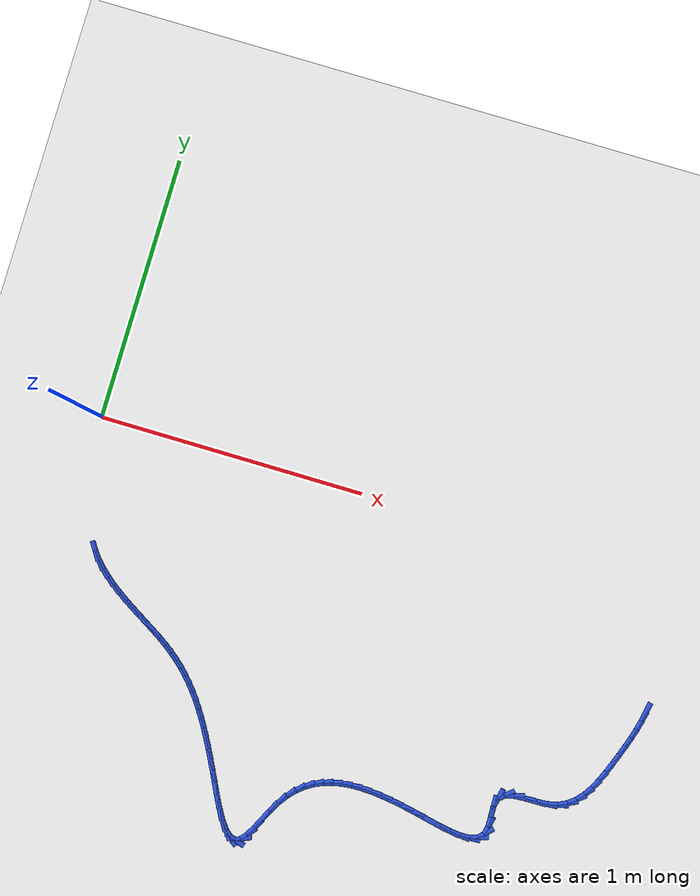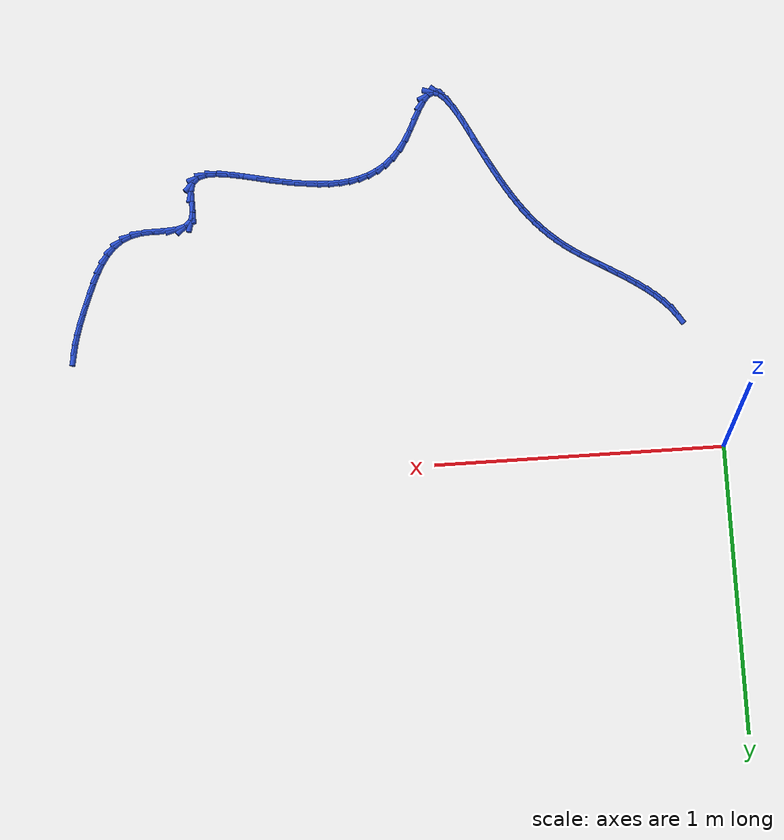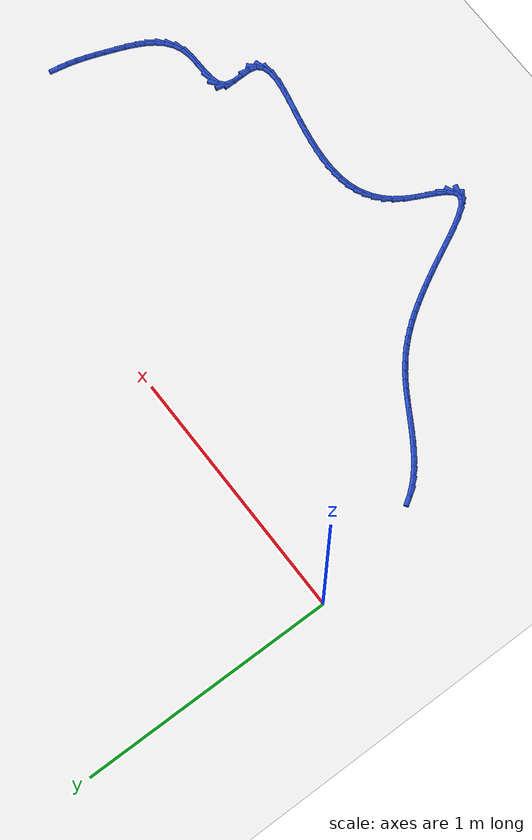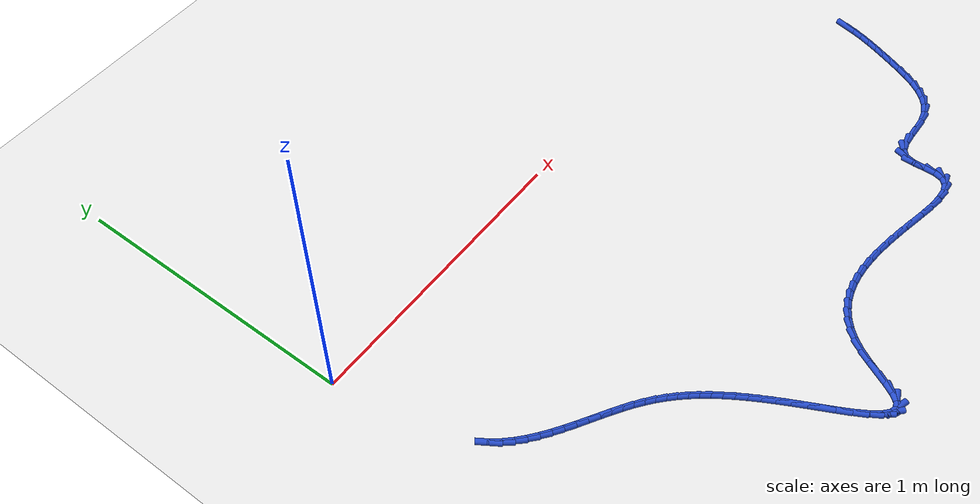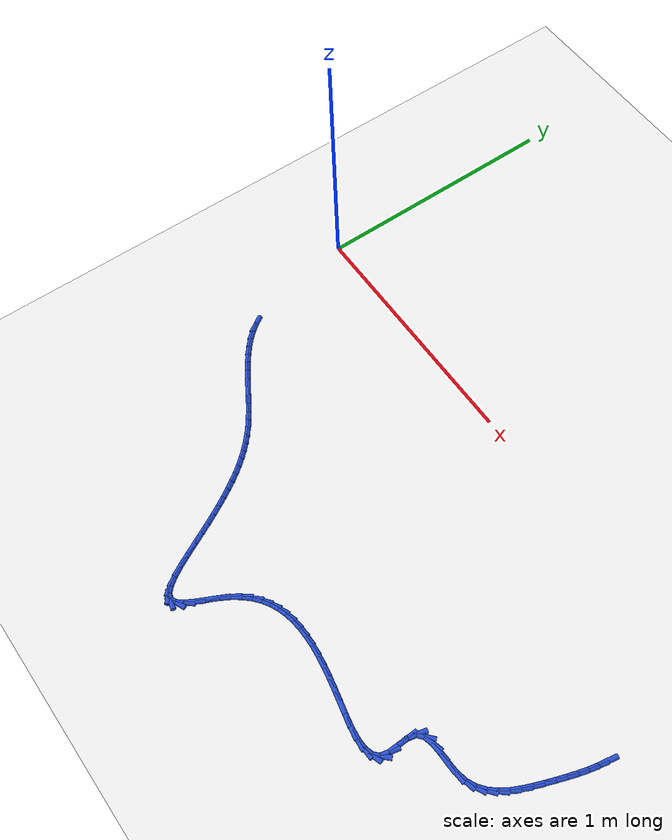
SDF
<sdf version="1.6">
 <world name="default">
  <model name="ground_plane">
   <static>1</static>
   <link name="link">
    <collision name="collision">
     <geometry><plane><normal>0 0 1</normal><size>100 100</size></plane></geometry>
     <surface><friction><ode><mu>100</mu><mu2>50</mu2></ode></friction></surface>
    </collision>
    <visual name="visual">
     <cast_shadows>0</cast_shadows>
     <geometry><plane><normal>0 0 1</normal><size>100 100</size></plane></geometry>
     <material>
      <script><uri>file://media/materials/scripts/gazebo.material</uri><name>Gazebo/WhiteGlow</name></script>
     </material>
    </visual>
   </link>
  </model>
  <model name="line">
   <link name="link_153">
    <pose>2.22496270436728 -0.4752385417204542 0.01 0 1.57 1.3793278878577797</pose>
    <collision name="collision">
     <geometry><cylinder><radius>0.01</radius><length>0.08</length></cylinder></geometry>
    </collision>
    <visual name="visual">
     <material>
      <script><name>Gazebo/Blue</name><uri>file://media/materials/scripts/gazebo.material</uri></script>
     </material>
     <geometry><cylinder><radius>0.01</radius><length>0.08</length></cylinder></geometry>
    </visual>
   </link>
   <link name="link_154">
    <pose>2.218258596094223 -0.509823786244519 0.01 0 1.57 1.3231855823085519</pose>
    <collision name="collision">
     <geometry><cylinder><radius>0.01</radius><length>0.08</length></cylinder></geometry>
    </collision>
    <visual name="visual">
     <material>
      <script><name>Gazebo/Blue</name><uri>file://media/materials/scripts/gazebo.material</uri></script>
     </material>
     <geometry><cylinder><radius>0.01</radius><length>0.08</length></cylinder></geometry>
    </visual>
   </link>
   <link name="link_155">
    <pose>2.2094634976810403 -0.5446147391092758 0.01 0 1.57 1.2784393899785345</pose>
    <collision name="collision">
     <geometry><cylinder><radius>0.01</radius><length>0.08</length></cylinder></geometry>
    </collision>
    <visual name="visual">
     <material>
      <script><name>Gazebo/Blue</name><uri>file://media/materials/scripts/gazebo.material</uri></script>
     </material>
     <geometry><cylinder><radius>0.01</radius><length>0.08</length></cylinder></geometry>
    </visual>
   </link>
   <link name="link_156">
    <pose>2.198914836921006 -0.5796622870430734 0.01 0 1.57 1.2444761461741571</pose>
    <collision name="collision">
     <geometry><cylinder><radius>0.01</radius><length>0.08</length></cylinder></geometry>
    </collision>
    <visual name="visual">
     <material>
      <script><name>Gazebo/Blue</name><uri>file://media/materials/scripts/gazebo.material</uri></script>
     </material>
     <geometry><cylinder><radius>0.01</radius><length>0.08</length></cylinder></geometry>
    </visual>
   </link>
   <link name="link_157">
    <pose>2.18695004160739 -0.6150173167742595 0.01 0 1.57 1.2206210550342915</pose>
    <collision name="collision">
     <geometry><cylinder><radius>0.01</radius><length>0.08</length></cylinder></geometry>
    </collision>
    <visual name="visual">
     <material>
      <script><name>Gazebo/Blue</name><uri>file://media/materials/scripts/gazebo.material</uri></script>
     </material>
     <geometry><cylinder><radius>0.01</radius><length>0.08</length></cylinder></geometry>
    </visual>
   </link>
   <link name="link_158">
    <pose>2.1739065395334656 -0.6507307150311828 0.01 0 1.57 1.206236548502255</pose>
    <collision name="collision">
     <geometry><cylinder><radius>0.01</radius><length>0.08</length></cylinder></geometry>
    </collision>
    <visual name="visual">
     <material>
      <script><name>Gazebo/Blue</name><uri>file://media/materials/scripts/gazebo.material</uri></script>
     </material>
     <geometry><cylinder><radius>0.01</radius><length>0.08</length></cylinder></geometry>
    </visual>
   </link>
   <link name="link_159">
    <pose>2.1601215736117334 -0.6868531696004195 0.01 0 1.57 1.192841448387615</pose>
    <collision name="collision">
     <geometry><cylinder><radius>0.01</radius><length>0.08</length></cylinder></geometry>
    </collision>
    <visual name="visual">
     <material>
      <script><name>Gazebo/Blue</name><uri>file://media/materials/scripts/gazebo.material</uri></script>
     </material>
     <geometry><cylinder><radius>0.01</radius><length>0.08</length></cylinder></geometry>
    </visual>
   </link>
   <link name="link_160">
    <pose>2.1456972973618265 -0.7231823992863542 0.01 0 1.57 1.1563097768955477</pose>
    <collision name="collision">
     <geometry><cylinder><radius>0.01</radius><length>0.08</length></cylinder></geometry>
    </collision>
    <visual name="visual">
     <material>
      <script><name>Gazebo/Blue</name><uri>file://media/materials/scripts/gazebo.material</uri></script>
     </material>
     <geometry><cylinder><radius>0.01</radius><length>0.08</length></cylinder></geometry>
    </visual>
   </link>
   <link name="link_161">
    <pose>2.1300405354158336 -0.7587679111649521 0.01 0 1.57 1.0899143388705692</pose>
    <collision name="collision">
     <geometry><cylinder><radius>0.01</radius><length>0.08</length></cylinder></geometry>
    </collision>
    <visual name="visual">
     <material>
      <script><name>Gazebo/Blue</name><uri>file://media/materials/scripts/gazebo.material</uri></script>
     </material>
     <geometry><cylinder><radius>0.01</radius><length>0.08</length></cylinder></geometry>
    </visual>
   </link>
   <link name="link_162">
    <pose>2.112430172607958 -0.7925215421261379 0.01 0 1.57 0.988895186245236</pose>
    <collision name="collision">
     <geometry><cylinder><radius>0.01</radius><length>0.08</length></cylinder></geometry>
    </collision>
    <visual name="visual">
     <material>
      <script><name>Gazebo/Blue</name><uri>file://media/materials/scripts/gazebo.material</uri></script>
     </material>
     <geometry><cylinder><radius>0.01</radius><length>0.08</length></cylinder></geometry>
    </visual>
   </link>
   <link name="link_163">
    <pose>2.0921450937724058 -0.823355129059837 0.01 0 1.57 0.847576881285694</pose>
    <collision name="collision">
     <geometry><cylinder><radius>0.01</radius><length>0.08</length></cylinder></geometry>
    </collision>
    <visual name="visual">
     <material>
      <script><name>Gazebo/Blue</name><uri>file://media/materials/scripts/gazebo.material</uri></script>
     </material>
     <geometry><cylinder><radius>0.01</radius><length>0.08</length></cylinder></geometry>
    </visual>
   </link>
   <link name="link_164">
    <pose>2.068464183743382 -0.8501805088559743 0.01 0 1.57 0.6634695389039632</pose>
    <collision name="collision">
     <geometry><cylinder><radius>0.01</radius><length>0.08</length></cylinder></geometry>
    </collision>
    <visual name="visual">
     <material>
      <script><name>Gazebo/Blue</name><uri>file://media/materials/scripts/gazebo.material</uri></script>
     </material>
     <geometry><cylinder><radius>0.01</radius><length>0.08</length></cylinder></geometry>
    </visual>
   </link>
   <link name="link_165">
    <pose>2.040666327355091 -0.871909518404475 0.01 0 1.57 0.4445081977203441</pose>
    <collision name="collision">
     <geometry><cylinder><radius>0.01</radius><length>0.08</length></cylinder></geometry>
    </collision>
    <visual name="visual">
     <material>
      <script><name>Gazebo/Blue</name><uri>file://media/materials/scripts/gazebo.material</uri></script>
     </material>
     <geometry><cylinder><radius>0.01</radius><length>0.08</length></cylinder></geometry>
    </visual>
   </link>
   <link name="link_166">
    <pose>2.008030409441737 -0.8874539945952634 0.01 0 1.57 0.2165230808616176</pose>
    <collision name="collision">
     <geometry><cylinder><radius>0.01</radius><length>0.08</length></cylinder></geometry>
    </collision>
    <visual name="visual">
     <material>
      <script><name>Gazebo/Blue</name><uri>file://media/materials/scripts/gazebo.material</uri></script>
     </material>
     <geometry><cylinder><radius>0.01</radius><length>0.08</length></cylinder></geometry>
    </visual>
   </link>
   <link name="link_167">
    <pose>1.9699323869786374 -0.8958344721589827 0.01 0 1.57 0.06271989279457768</pose>
    <collision name="collision">
     <geometry><cylinder><radius>0.01</radius><length>0.08</length></cylinder></geometry>
    </collision>
    <visual name="visual">
     <material>
      <script><name>Gazebo/Blue</name><uri>file://media/materials/scripts/gazebo.material</uri></script>
     </material>
     <geometry><cylinder><radius>0.01</radius><length>0.08</length></cylinder></geometry>
    </visual>
   </link>
   <link name="link_168">
    <pose>1.927894272865719 -0.898474560924802 0.01 0 1.57 0.01590419140680189</pose>
    <collision name="collision">
     <geometry><cylinder><radius>0.01</radius><length>0.08</length></cylinder></geometry>
    </collision>
    <visual name="visual">
     <material>
      <script><name>Gazebo/Blue</name><uri>file://media/materials/scripts/gazebo.material</uri></script>
     </material>
     <geometry><cylinder><radius>0.01</radius><length>0.08</length></cylinder></geometry>
    </visual>
   </link>
   <link name="link_169">
    <pose>1.885537097894417 -0.8991482743477214 0.01 0 1.57 0.06610002634053562</pose>
    <collision name="collision">
     <geometry><cylinder><radius>0.01</radius><length>0.08</length></cylinder></geometry>
    </collision>
    <visual name="visual">
     <material>
      <script><name>Gazebo/Blue</name><uri>file://media/materials/scripts/gazebo.material</uri></script>
     </material>
     <geometry><cylinder><radius>0.01</radius><length>0.08</length></cylinder></geometry>
    </visual>
   </link>
   <link name="link_170">
    <pose>1.8465695559421471 -0.9017277878069309 0.01 0 1.57 0.2564681852939169</pose>
    <collision name="collision">
     <geometry><cylinder><radius>0.01</radius><length>0.08</length></cylinder></geometry>
    </collision>
    <visual name="visual">
     <material>
      <script><name>Gazebo/Blue</name><uri>file://media/materials/scripts/gazebo.material</uri></script>
     </material>
     <geometry><cylinder><radius>0.01</radius><length>0.08</length></cylinder></geometry>
    </visual>
   </link>
   <link name="link_171">
    <pose>1.8147003408863251 -0.9100852766816205 0.01 0 1.57 0.7073749556242062</pose>
    <collision name="collision">
     <geometry><cylinder><radius>0.01</radius><length>0.08</length></cylinder></geometry>
    </collision>
    <visual name="visual">
     <material>
      <script><name>Gazebo/Blue</name><uri>file://media/materials/scripts/gazebo.material</uri></script>
     </material>
     <geometry><cylinder><radius>0.01</radius><length>0.08</length></cylinder></geometry>
    </visual>
   </link>
   <link name="link_172">
    <pose>1.7936381466043672 -0.928092916350981 0.01 0 1.57 1.3246263786754433</pose>
    <collision name="collision">
     <geometry><cylinder><radius>0.01</radius><length>0.08</length></cylinder></geometry>
    </collision>
    <visual name="visual">
     <material>
      <script><name>Gazebo/Blue</name><uri>file://media/materials/scripts/gazebo.material</uri></script>
     </material>
     <geometry><cylinder><radius>0.01</radius><length>0.08</length></cylinder></geometry>
    </visual>
   </link>
   <link name="link_173">
    <pose>1.785988051865306 -0.9585391014576328 0.01 0 1.57 -1.551234601585176</pose>
    <collision name="collision">
     <geometry><cylinder><radius>0.01</radius><length>0.08</length></cylinder></geometry>
    </collision>
    <visual name="visual">
     <material>
      <script><name>Gazebo/Blue</name><uri>file://media/materials/scripts/gazebo.material</uri></script>
     </material>
     <geometry><cylinder><radius>0.01</radius><length>0.08</length></cylinder></geometry>
    </visual>
   </link>
   <link name="link_174">
    <pose>1.7867352123665996 -0.9967292502184554 0.01 0 1.57 -1.5468131659820639</pose>
    <collision name="collision">
     <geometry><cylinder><radius>0.01</radius><length>0.08</length></cylinder></geometry>
    </collision>
    <visual name="visual">
     <material>
      <script><name>Gazebo/Blue</name><uri>file://media/materials/scripts/gazebo.material</uri></script>
     </material>
     <geometry><cylinder><radius>0.01</radius><length>0.08</length></cylinder></geometry>
    </visual>
   </link>
   <link name="link_175">
    <pose>1.7876486960917568 -1.0348104932507625 0.01 0 1.57 1.3418517442682216</pose>
    <collision name="collision">
     <geometry><cylinder><radius>0.01</radius><length>0.08</length></cylinder></geometry>
    </collision>
    <visual name="visual">
     <material>
      <script><name>Gazebo/Blue</name><uri>file://media/materials/scripts/gazebo.material</uri></script>
     </material>
     <geometry><cylinder><radius>0.01</radius><length>0.08</length></cylinder></geometry>
    </visual>
   </link>
   <link name="link_176">
    <pose>1.780605979582016 -1.0650328066138395 0.01 0 1.57 0.7859454983832747</pose>
    <collision name="collision">
     <geometry><cylinder><radius>0.01</radius><length>0.08</length></cylinder></geometry>
    </collision>
    <visual name="visual">
     <material>
      <script><name>Gazebo/Blue</name><uri>file://media/materials/scripts/gazebo.material</uri></script>
     </material>
     <geometry><cylinder><radius>0.01</radius><length>0.08</length></cylinder></geometry>
    </visual>
   </link>
   <link name="link_177">
    <pose>1.7618540529635092 -1.0838052716467699 0.01 0 1.57 0.30331744073494493</pose>
    <collision name="collision">
     <geometry><cylinder><radius>0.01</radius><length>0.08</length></cylinder></geometry>
    </collision>
    <visual name="visual">
     <material>
      <script><name>Gazebo/Blue</name><uri>file://media/materials/scripts/gazebo.material</uri></script>
     </material>
     <geometry><cylinder><radius>0.01</radius><length>0.08</length></cylinder></geometry>
    </visual>
   </link>
   <link name="link_178">
    <pose>1.7331556824806227 -1.0927871407042113 0.01 0 1.57 0.032468378963894436</pose>
    <collision name="collision">
     <geometry><cylinder><radius>0.01</radius><length>0.08</length></cylinder></geometry>
    </collision>
    <visual name="visual">
     <material>
      <script><name>Gazebo/Blue</name><uri>file://media/materials/scripts/gazebo.material</uri></script>
     </material>
     <geometry><cylinder><radius>0.01</radius><length>0.08</length></cylinder></geometry>
    </visual>
   </link>
   <link name="link_179">
    <pose>1.696626561992602 -1.093973598980449 0.01 0 1.57 -0.10878547289125076</pose>
    <collision name="collision">
     <geometry><cylinder><radius>0.01</radius><length>0.08</length></cylinder></geometry>
    </collision>
    <visual name="visual">
     <material>
      <script><name>Gazebo/Blue</name><uri>file://media/materials/scripts/gazebo.material</uri></script>
     </material>
     <geometry><cylinder><radius>0.01</radius><length>0.08</length></cylinder></geometry>
    </visual>
   </link>
   <link name="link_180">
    <pose>1.654382385358694 -1.0893598316697681 0.01 0 1.57 -0.1816185674180864</pose>
    <collision name="collision">
     <geometry><cylinder><radius>0.01</radius><length>0.08</length></cylinder></geometry>
    </collision>
    <visual name="visual">
     <material>
      <script><name>Gazebo/Blue</name><uri>file://media/materials/scripts/gazebo.material</uri></script>
     </material>
     <geometry><cylinder><radius>0.01</radius><length>0.08</length></cylinder></geometry>
    </visual>
   </link>
   <link name="link_181">
    <pose>1.6085388464381454 -1.0809410239664532 0.01 0 1.57 -0.2128526229507936</pose>
    <collision name="collision">
     <geometry><cylinder><radius>0.01</radius><length>0.08</length></cylinder></geometry>
    </collision>
    <visual name="visual">
     <material>
      <script><name>Gazebo/Blue</name><uri>file://media/materials/scripts/gazebo.material</uri></script>
     </material>
     <geometry><cylinder><radius>0.01</radius><length>0.08</length></cylinder></geometry>
    </visual>
   </link>
   <link name="link_182">
    <pose>1.5612116390902029 -1.0707123610647893 0.01 0 1.57 -0.21285294016550102</pose>
    <collision name="collision">
     <geometry><cylinder><radius>0.01</radius><length>0.08</length></cylinder></geometry>
    </collision>
    <visual name="visual">
     <material>
      <script><name>Gazebo/Blue</name><uri>file://media/materials/scripts/gazebo.material</uri></script>
     </material>
     <geometry><cylinder><radius>0.01</radius><length>0.08</length></cylinder></geometry>
    </visual>
   </link>
   <link name="link_183">
    <pose>1.5144360569938415 -1.0606029034580104 0.01 0 1.57 -0.19593545880093702</pose>
    <collision name="collision">
     <geometry><cylinder><radius>0.01</radius><length>0.08</length></cylinder></geometry>
    </collision>
    <visual name="visual">
     <material>
      <script><name>Gazebo/Blue</name><uri>file://media/materials/scripts/gazebo.material</uri></script>
     </material>
     <geometry><cylinder><radius>0.01</radius><length>0.08</length></cylinder></geometry>
    </visual>
   </link>
   <link name="link_184">
    <pose>1.4691103713908233 -1.0516065735775355 0.01 0 1.57 -0.1713368141587696</pose>
    <collision name="collision">
     <geometry><cylinder><radius>0.01</radius><length>0.08</length></cylinder></geometry>
    </collision>
    <visual name="visual">
     <material>
      <script><name>Gazebo/Blue</name><uri>file://media/materials/scripts/gazebo.material</uri></script>
     </material>
     <geometry><cylinder><radius>0.01</radius><length>0.08</length></cylinder></geometry>
    </visual>
   </link>
   <link name="link_185">
    <pose>1.4252901458878282 -1.0440242134381097 0.01 0 1.57 -0.1382798644476222</pose>
    <collision name="collision">
     <geometry><cylinder><radius>0.01</radius><length>0.08</length></cylinder></geometry>
    </collision>
    <visual name="visual">
     <material>
      <script><name>Gazebo/Blue</name><uri>file://media/materials/scripts/gazebo.material</uri></script>
     </material>
     <geometry><cylinder><radius>0.01</radius><length>0.08</length></cylinder></geometry>
    </visual>
   </link>
   <link name="link_186">
    <pose>1.3830110675568608 -1.038140317704152 0.01 0 1.57 -0.09554898453894892</pose>
    <collision name="collision">
     <geometry><cylinder><radius>0.01</radius><length>0.08</length></cylinder></geometry>
    </collision>
    <visual name="visual">
     <material>
      <script><name>Gazebo/Blue</name><uri>file://media/materials/scripts/gazebo.material</uri></script>
     </material>
     <geometry><cylinder><radius>0.01</radius><length>0.08</length></cylinder></geometry>
    </visual>
   </link>
   <link name="link_187">
    <pose>1.342308823469927 -1.0342393810400818 0.01 0 1.57 -0.04176374225952137</pose>
    <collision name="collision">
     <geometry><cylinder><radius>0.01</radius><length>0.08</length></cylinder></geometry>
    </collision>
    <visual name="visual">
     <material>
      <script><name>Gazebo/Blue</name><uri>file://media/materials/scripts/gazebo.material</uri></script>
     </material>
     <geometry><cylinder><radius>0.01</radius><length>0.08</length></cylinder></geometry>
    </visual>
   </link>
   <link name="link_188">
    <pose>1.303219100699033 -1.032605898110319 0.01 0 1.57 0.024525752244618587</pose>
    <collision name="collision">
     <geometry><cylinder><radius>0.01</radius><length>0.08</length></cylinder></geometry>
    </collision>
    <visual name="visual">
     <material>
      <script><name>Gazebo/Blue</name><uri>file://media/materials/scripts/gazebo.material</uri></script>
     </material>
     <geometry><cylinder><radius>0.01</radius><length>0.08</length></cylinder></geometry>
    </visual>
   </link>
   <link name="link_189">
    <pose>1.2657775863161829 -1.033524363579282 0.01 0 1.57 0.10462657537874703</pose>
    <collision name="collision">
     <geometry><cylinder><radius>0.01</radius><length>0.08</length></cylinder></geometry>
    </collision>
    <visual name="visual">
     <material>
      <script><name>Gazebo/Blue</name><uri>file://media/materials/scripts/gazebo.material</uri></script>
     </material>
     <geometry><cylinder><radius>0.01</radius><length>0.08</length></cylinder></geometry>
    </visual>
   </link>
   <link name="link_190">
    <pose>1.2300199673933836 -1.0372792721113901 0.01 0 1.57 0.19932249348458805</pose>
    <collision name="collision">
     <geometry><cylinder><radius>0.01</radius><length>0.08</length></cylinder></geometry>
    </collision>
    <visual name="visual">
     <material>
      <script><name>Gazebo/Blue</name><uri>file://media/materials/scripts/gazebo.material</uri></script>
     </material>
     <geometry><cylinder><radius>0.01</radius><length>0.08</length></cylinder></geometry>
    </visual>
   </link>
   <link name="link_191">
    <pose>1.19598193100264 -1.0441551183710633 0.01 0 1.57 0.30831967637247715</pose>
    <collision name="collision">
     <geometry><cylinder><radius>0.01</radius><length>0.08</length></cylinder></geometry>
    </collision>
    <visual name="visual">
     <material>
      <script><name>Gazebo/Blue</name><uri>file://media/materials/scripts/gazebo.material</uri></script>
     </material>
     <geometry><cylinder><radius>0.01</radius><length>0.08</length></cylinder></geometry>
    </visual>
   </link>
   <link name="link_192">
    <pose>1.163699164215958 -1.0544363970227204 0.01 0 1.57 0.42964824664168016</pose>
    <collision name="collision">
     <geometry><cylinder><radius>0.01</radius><length>0.08</length></cylinder></geometry>
    </collision>
    <visual name="visual">
     <material>
      <script><name>Gazebo/Blue</name><uri>file://media/materials/scripts/gazebo.material</uri></script>
     </material>
     <geometry><cylinder><radius>0.01</radius><length>0.08</length></cylinder></geometry>
    </visual>
   </link>
   <link name="link_193">
    <pose>1.1332073541053427 -1.06840760273078 0.01 0 1.57 0.5593490033935022</pose>
    <collision name="collision">
     <geometry><cylinder><radius>0.01</radius><length>0.08</length></cylinder></geometry>
    </collision>
    <visual name="visual">
     <material>
      <script><name>Gazebo/Blue</name><uri>file://media/materials/scripts/gazebo.material</uri></script>
     </material>
     <geometry><cylinder><radius>0.01</radius><length>0.08</length></cylinder></geometry>
    </visual>
   </link>
   <link name="link_194">
    <pose>1.1045421877427997 -1.0863532301596623 0.01 0 1.57 0.6918435094059209</pose>
    <collision name="collision">
     <geometry><cylinder><radius>0.01</radius><length>0.08</length></cylinder></geometry>
    </collision>
    <visual name="visual">
     <material>
      <script><name>Gazebo/Blue</name><uri>file://media/materials/scripts/gazebo.material</uri></script>
     </material>
     <geometry><cylinder><radius>0.01</radius><length>0.08</length></cylinder></geometry>
    </visual>
   </link>
   <link name="link_195">
    <pose>1.077739352200335 -1.108557773973786 0.01 0 1.57 0.8210662492868411</pose>
    <collision name="collision">
     <geometry><cylinder><radius>0.01</radius><length>0.08</length></cylinder></geometry>
    </collision>
    <visual name="visual">
     <material>
      <script><name>Gazebo/Blue</name><uri>file://media/materials/scripts/gazebo.material</uri></script>
     </material>
     <geometry><cylinder><radius>0.01</radius><length>0.08</length></cylinder></geometry>
    </visual>
   </link>
   <link name="link_196">
    <pose>1.0528345345499537 -1.1353057288375707 0.01 0 1.57 0.941858156651442</pose>
    <collision name="collision">
     <geometry><cylinder><radius>0.01</radius><length>0.08</length></cylinder></geometry>
    </collision>
    <visual name="visual">
     <material>
      <script><name>Gazebo/Blue</name><uri>file://media/materials/scripts/gazebo.material</uri></script>
     </material>
     <geometry><cylinder><radius>0.01</radius><length>0.08</length></cylinder></geometry>
    </visual>
   </link>
   <link name="link_197">
    <pose>1.0298634218636613 -1.1668815894154352 0.01 0 1.57 1.0466713134268482</pose>
    <collision name="collision">
     <geometry><cylinder><radius>0.01</radius><length>0.08</length></cylinder></geometry>
    </collision>
    <visual name="visual">
     <material>
      <script><name>Gazebo/Blue</name><uri>file://media/materials/scripts/gazebo.material</uri></script>
     </material>
     <geometry><cylinder><radius>0.01</radius><length>0.08</length></cylinder></geometry>
    </visual>
   </link>
   <link name="link_198">
    <pose>1.008819715540107 -1.203286102308684 0.01 0 1.57 1.103928186689989</pose>
    <collision name="collision">
     <geometry><cylinder><radius>0.01</radius><length>0.08</length></cylinder></geometry>
    </collision>
    <visual name="visual">
     <material>
      <script><name>Gazebo/Blue</name><uri>file://media/materials/scripts/gazebo.material</uri></script>
     </material>
     <geometry><cylinder><radius>0.01</radius><length>0.08</length></cylinder></geometry>
    </visual>
   </link>
   <link name="link_199">
    <pose>0.9893202478604951 -1.2419730528917636 0.01 0 1.57 1.1071859482080257</pose>
    <collision name="collision">
     <geometry><cylinder><radius>0.01</radius><length>0.08</length></cylinder></geometry>
    </collision>
    <visual name="visual">
     <material>
      <script><name>Gazebo/Blue</name><uri>file://media/materials/scripts/gazebo.material</uri></script>
     </material>
     <geometry><cylinder><radius>0.01</radius><length>0.08</length></cylinder></geometry>
    </visual>
   </link>
   <link name="link_200">
    <pose>0.9707828459674344 -1.2790513077105823 0.01 0 1.57 1.048754901406156</pose>
    <collision name="collision">
     <geometry><cylinder><radius>0.01</radius><length>0.08</length></cylinder></geometry>
    </collision>
    <visual name="visual">
     <material>
      <script><name>Gazebo/Blue</name><uri>file://media/materials/scripts/gazebo.material</uri></script>
     </material>
     <geometry><cylinder><radius>0.01</radius><length>0.08</length></cylinder></geometry>
    </visual>
   </link>
   <link name="link_201">
    <pose>0.9526235384868769 -1.3106175785549778 0.01 0 1.57 0.8785671978421075</pose>
    <collision name="collision">
     <geometry><cylinder><radius>0.01</radius><length>0.08</length></cylinder></geometry>
    </collision>
    <visual name="visual">
     <material>
      <script><name>Gazebo/Blue</name><uri>file://media/materials/scripts/gazebo.material</uri></script>
     </material>
     <geometry><cylinder><radius>0.01</radius><length>0.08</length></cylinder></geometry>
    </visual>
   </link>
   <link name="link_202">
    <pose>0.9342583540447742 -1.332768577214788 0.01 0 1.57 0.4331256462463157</pose>
    <collision name="collision">
     <geometry><cylinder><radius>0.01</radius><length>0.08</length></cylinder></geometry>
    </collision>
    <visual name="visual">
     <material>
      <script><name>Gazebo/Blue</name><uri>file://media/materials/scripts/gazebo.material</uri></script>
     </material>
     <geometry><cylinder><radius>0.01</radius><length>0.08</length></cylinder></geometry>
    </visual>
   </link>
   <link name="link_203">
    <pose>0.91510644369264 -1.3416246032741173 0.01 0 1.57 -0.2935869516078919</pose>
    <collision name="collision">
     <geometry><cylinder><radius>0.01</radius><length>0.08</length></cylinder></geometry>
    </collision>
    <visual name="visual">
     <material>
      <script><name>Gazebo/Blue</name><uri>file://media/materials/scripts/gazebo.material</uri></script>
     </material>
     <geometry><cylinder><radius>0.01</radius><length>0.08</length></cylinder></geometry>
    </visual>
   </link>
   <link name="link_204">
    <pose>0.894878619946815 -1.3355092596434581 0.01 0 1.57 -0.7284655689480644</pose>
    <collision name="collision">
     <geometry><cylinder><radius>0.01</radius><length>0.08</length></cylinder></geometry>
    </collision>
    <visual name="visual">
     <material>
      <script><name>Gazebo/Blue</name><uri>file://media/materials/scripts/gazebo.material</uri></script>
     </material>
     <geometry><cylinder><radius>0.01</radius><length>0.08</length></cylinder></geometry>
    </visual>
   </link>
   <link name="link_205">
    <pose>0.8738108718901206 -1.3167134997935206 0.01 0 1.57 -0.9264246837506878</pose>
    <collision name="collision">
     <geometry><cylinder><radius>0.01</radius><length>0.08</length></cylinder></geometry>
    </collision>
    <visual name="visual">
     <material>
      <script><name>Gazebo/Blue</name><uri>file://media/materials/scripts/gazebo.material</uri></script>
     </material>
     <geometry><cylinder><radius>0.01</radius><length>0.08</length></cylinder></geometry>
    </visual>
   </link>
   <link name="link_206">
    <pose>0.8521941408117103 -1.2879434036124635 0.01 0 1.57 -1.025255944393928</pose>
    <collision name="collision">
     <geometry><cylinder><radius>0.01</radius><length>0.08</length></cylinder></geometry>
    </collision>
    <visual name="visual">
     <material>
      <script><name>Gazebo/Blue</name><uri>file://media/materials/scripts/gazebo.material</uri></script>
     </material>
     <geometry><cylinder><radius>0.01</radius><length>0.08</length></cylinder></geometry>
    </visual>
   </link>
   <link name="link_207">
    <pose>0.8303193680007374 -1.251905050988446 0.01 0 1.57 -1.0772359655662525</pose>
    <collision name="collision">
     <geometry><cylinder><radius>0.01</radius><length>0.08</length></cylinder></geometry>
    </collision>
    <visual name="visual">
     <material>
      <script><name>Gazebo/Blue</name><uri>file://media/materials/scripts/gazebo.material</uri></script>
     </material>
     <geometry><cylinder><radius>0.01</radius><length>0.08</length></cylinder></geometry>
    </visual>
   </link>
   <link name="link_208">
    <pose>0.8084774947463543 -1.2113045218096257 0.01 0 1.57 -1.1017045173225684</pose>
    <collision name="collision">
     <geometry><cylinder><radius>0.01</radius><length>0.08</length></cylinder></geometry>
    </collision>
    <visual name="visual">
     <material>
      <script><name>Gazebo/Blue</name><uri>file://media/materials/scripts/gazebo.material</uri></script>
     </material>
     <geometry><cylinder><radius>0.01</radius><length>0.08</length></cylinder></geometry>
    </visual>
   </link>
   <link name="link_209">
    <pose>0.7869594623377149 -1.168847895964163 0.01 0 1.57 -1.1054643836681985</pose>
    <collision name="collision">
     <geometry><cylinder><radius>0.01</radius><length>0.08</length></cylinder></geometry>
    </collision>
    <visual name="visual">
     <material>
      <script><name>Gazebo/Blue</name><uri>file://media/materials/scripts/gazebo.material</uri></script>
     </material>
     <geometry><cylinder><radius>0.01</radius><length>0.08</length></cylinder></geometry>
    </visual>
   </link>
   <link name="link_210">
    <pose>0.7660501744801912 -1.1272048203488976 0.01 0 1.57 -1.0964876941118173</pose>
    <collision name="collision">
     <geometry><cylinder><radius>0.01</radius><length>0.08</length></cylinder></geometry>
    </collision>
    <visual name="visual">
     <material>
      <script><name>Gazebo/Blue</name><uri>file://media/materials/scripts/gazebo.material</uri></script>
     </material>
     <geometry><cylinder><radius>0.01</radius><length>0.08</length></cylinder></geometry>
    </visual>
   </link>
   <link name="link_211">
    <pose>0.7458322375505432 -1.0878242057043626 0.01 0 1.57 -1.083443020017651</pose>
    <collision name="collision">
     <geometry><cylinder><radius>0.01</radius><length>0.08</length></cylinder></geometry>
    </collision>
    <visual name="visual">
     <material>
      <script><name>Gazebo/Blue</name><uri>file://media/materials/scripts/gazebo.material</uri></script>
     </material>
     <geometry><cylinder><radius>0.01</radius><length>0.08</length></cylinder></geometry>
    </visual>
   </link>
   <link name="link_212">
    <pose>0.726142816963205 -1.050673882131013 0.01 0 1.57 -1.06651295294468</pose>
    <collision name="collision">
     <geometry><cylinder><radius>0.01</radius><length>0.08</length></cylinder></geometry>
    </collision>
    <visual name="visual">
     <material>
      <script><name>Gazebo/Blue</name><uri>file://media/materials/scripts/gazebo.material</uri></script>
     </material>
     <geometry><cylinder><radius>0.01</radius><length>0.08</length></cylinder></geometry>
    </visual>
   </link>
   <link name="link_213">
    <pose>0.7068043106087856 -1.015632567083098 0.01 0 1.57 -1.0453458252603378</pose>
    <collision name="collision">
     <geometry><cylinder><radius>0.01</radius><length>0.08</length></cylinder></geometry>
    </collision>
    <visual name="visual">
     <material>
      <script><name>Gazebo/Blue</name><uri>file://media/materials/scripts/gazebo.material</uri></script>
     </material>
     <geometry><cylinder><radius>0.01</radius><length>0.08</length></cylinder></geometry>
    </visual>
   </link>
   <link name="link_214">
    <pose>0.6876391163778941 -0.9825789780148672 0.01 0 1.57 -1.0196672500232877</pose>
    <collision name="collision">
     <geometry><cylinder><radius>0.01</radius><length>0.08</length></cylinder></geometry>
    </collision>
    <visual name="visual">
     <material>
      <script><name>Gazebo/Blue</name><uri>file://media/materials/scripts/gazebo.material</uri></script>
     </material>
     <geometry><cylinder><radius>0.01</radius><length>0.08</length></cylinder></geometry>
    </visual>
   </link>
   <link name="link_215">
    <pose>0.668469632161139 -0.9513918323805701 0.01 0 1.57 -0.9893263312867906</pose>
    <collision name="collision">
     <geometry><cylinder><radius>0.01</radius><length>0.08</length></cylinder></geometry>
    </collision>
    <visual name="visual">
     <material>
      <script><name>Gazebo/Blue</name><uri>file://media/materials/scripts/gazebo.material</uri></script>
     </material>
     <geometry><cylinder><radius>0.01</radius><length>0.08</length></cylinder></geometry>
    </visual>
   </link>
   <link name="link_216">
    <pose>0.649118255849129 -0.9219498476344561 0.01 0 1.57 -0.9543467210219927</pose>
    <collision name="collision">
     <geometry><cylinder><radius>0.01</radius><length>0.08</length></cylinder></geometry>
    </collision>
    <visual name="visual">
     <material>
      <script><name>Gazebo/Blue</name><uri>file://media/materials/scripts/gazebo.material</uri></script>
     </material>
     <geometry><cylinder><radius>0.01</radius><length>0.08</length></cylinder></geometry>
    </visual>
   </link>
   <link name="link_217">
    <pose>0.6294073853324735 -0.8941317412307749 0.01 0 1.57 -0.9149749842867962</pose>
    <collision name="collision">
     <geometry><cylinder><radius>0.01</radius><length>0.08</length></cylinder></geometry>
    </collision>
    <visual name="visual">
     <material>
      <script><name>Gazebo/Blue</name><uri>file://media/materials/scripts/gazebo.material</uri></script>
     </material>
     <geometry><cylinder><radius>0.01</radius><length>0.08</length></cylinder></geometry>
    </visual>
   </link>
   <link name="link_218">
    <pose>0.6091594185017809 -0.8678162306237761 0.01 0 1.57 -0.8717148218194489</pose>
    <collision name="collision">
     <geometry><cylinder><radius>0.01</radius><length>0.08</length></cylinder></geometry>
    </collision>
    <visual name="visual">
     <material>
      <script><name>Gazebo/Blue</name><uri>file://media/materials/scripts/gazebo.material</uri></script>
     </material>
     <geometry><cylinder><radius>0.01</radius><length>0.08</length></cylinder></geometry>
    </visual>
   </link>
   <link name="link_219">
    <pose>0.5881967532476602 -0.8428820332677092 0.01 0 1.57 -0.8253337726326154</pose>
    <collision name="collision">
     <geometry><cylinder><radius>0.01</radius><length>0.08</length></cylinder></geometry>
    </collision>
    <visual name="visual">
     <material>
      <script><name>Gazebo/Blue</name><uri>file://media/materials/scripts/gazebo.material</uri></script>
     </material>
     <geometry><cylinder><radius>0.01</radius><length>0.08</length></cylinder></geometry>
    </visual>
   </link>
   <link name="link_220">
    <pose>0.5663417874607202 -0.8192078666168241 0.01 0 1.57 -0.7768315564266822</pose>
    <collision name="collision">
     <geometry><cylinder><radius>0.01</radius><length>0.08</length></cylinder></geometry>
    </collision>
    <visual name="visual">
     <material>
      <script><name>Gazebo/Blue</name><uri>file://media/materials/scripts/gazebo.material</uri></script>
     </material>
     <geometry><cylinder><radius>0.01</radius><length>0.08</length></cylinder></geometry>
    </visual>
   </link>
   <link name="link_221">
    <pose>0.5434169190315697 -0.7966724481253697 0.01 0 1.57 -0.7273674986070818</pose>
    <collision name="collision">
     <geometry><cylinder><radius>0.01</radius><length>0.08</length></cylinder></geometry>
    </collision>
    <visual name="visual">
     <material>
      <script><name>Gazebo/Blue</name><uri>file://media/materials/scripts/gazebo.material</uri></script>
     </material>
     <geometry><cylinder><radius>0.01</radius><length>0.08</length></cylinder></geometry>
    </visual>
   </link>
   <link name="link_222">
    <pose>0.5192445458508175 -0.7751544952475957 0.01 0 1.57 -0.6781566821657087</pose>
    <collision name="collision">
     <geometry><cylinder><radius>0.01</radius><length>0.08</length></cylinder></geometry>
    </collision>
    <visual name="visual">
     <material>
      <script><name>Gazebo/Blue</name><uri>file://media/materials/scripts/gazebo.material</uri></script>
     </material>
     <geometry><cylinder><radius>0.01</radius><length>0.08</length></cylinder></geometry>
    </visual>
   </link>
   <link name="link_223">
    <pose>0.49364706580907264 -0.7545327254377521 0.01 0 1.57 -0.6304376012151471</pose>
    <collision name="collision">
     <geometry><cylinder><radius>0.01</radius><length>0.08</length></cylinder></geometry>
    </collision>
    <visual name="visual">
     <material>
      <script><name>Gazebo/Blue</name><uri>file://media/materials/scripts/gazebo.material</uri></script>
     </material>
     <geometry><cylinder><radius>0.01</radius><length>0.08</length></cylinder></geometry>
    </visual>
   </link>
   <link name="link_224">
    <pose>0.46645059547916895 -0.7346851445284588 0.01 0 1.57 -0.5894488324871665</pose>
    <collision name="collision">
     <geometry><cylinder><radius>0.01</radius><length>0.08</length></cylinder></geometry>
    </collision>
    <visual name="visual">
     <material>
      <script><name>Gazebo/Blue</name><uri>file://media/materials/scripts/gazebo.material</uri></script>
     </material>
     <geometry><cylinder><radius>0.01</radius><length>0.08</length></cylinder></geometry>
    </visual>
   </link>
   <link name="link_225">
    <pose>0.43768829795124425 -0.7154501371179436 0.01 0 1.57 -0.5610994913878795</pose>
    <collision name="collision">
     <geometry><cylinder><radius>0.01</radius><length>0.08</length></cylinder></geometry>
    </collision>
    <visual name="visual">
     <material>
      <script><name>Gazebo/Blue</name><uri>file://media/materials/scripts/gazebo.material</uri></script>
     </material>
     <geometry><cylinder><radius>0.01</radius><length>0.08</length></cylinder></geometry>
    </visual>
   </link>
   <link name="link_226">
    <pose>0.4077053418180724 -0.6966063812065545 0.01 0 1.57 -0.5446819613614963</pose>
    <collision name="collision">
     <geometry><cylinder><radius>0.01</radius><length>0.08</length></cylinder></geometry>
    </collision>
    <visual name="visual">
     <material>
      <script><name>Gazebo/Blue</name><uri>file://media/materials/scripts/gazebo.material</uri></script>
     </material>
     <geometry><cylinder><radius>0.01</radius><length>0.08</length></cylinder></geometry>
    </visual>
   </link>
   <link name="link_227">
    <pose>0.37687271909957726 -0.6779276131222405 0.01 0 1.57 -0.539321296373646</pose>
    <collision name="collision">
     <geometry><cylinder><radius>0.01</radius><length>0.08</length></cylinder></geometry>
    </collision>
    <visual name="visual">
     <material>
      <script><name>Gazebo/Blue</name><uri>file://media/materials/scripts/gazebo.material</uri></script>
     </material>
     <geometry><cylinder><radius>0.01</radius><length>0.08</length></cylinder></geometry>
    </visual>
   </link>
   <link name="link_228">
    <pose>0.3455614218156823 -0.6591875691929501 0.01 0 1.57 -0.5445327808913534</pose>
    <collision name="collision">
     <geometry><cylinder><radius>0.01</radius><length>0.08</length></cylinder></geometry>
    </collision>
    <visual name="visual">
     <material>
      <script><name>Gazebo/Blue</name><uri>file://media/materials/scripts/gazebo.material</uri></script>
     </material>
     <geometry><cylinder><radius>0.01</radius><length>0.08</length></cylinder></geometry>
    </visual>
   </link>
   <link name="link_229">
    <pose>0.31414244198631125 -0.6401599857466312 0.01 0 1.57 -0.5601924474464026</pose>
    <collision name="collision">
     <geometry><cylinder><radius>0.01</radius><length>0.08</length></cylinder></geometry>
    </collision>
    <visual name="visual">
     <material>
      <script><name>Gazebo/Blue</name><uri>file://media/materials/scripts/gazebo.material</uri></script>
     </material>
     <geometry><cylinder><radius>0.01</radius><length>0.08</length></cylinder></geometry>
    </visual>
   </link>
   <link name="link_230">
    <pose>0.2829867716313878 -0.6206185991112328 0.01 0 1.57 -0.5865011915570411</pose>
    <collision name="collision">
     <geometry><cylinder><radius>0.01</radius><length>0.08</length></cylinder></geometry>
    </collision>
    <visual name="visual">
     <material>
      <script><name>Gazebo/Blue</name><uri>file://media/materials/scripts/gazebo.material</uri></script>
     </material>
     <geometry><cylinder><radius>0.01</radius><length>0.08</length></cylinder></geometry>
    </visual>
   </link>
   <link name="link_231">
    <pose>0.2524654027708356 -0.6003371456147036 0.01 0 1.57 -0.6239384771968426</pose>
    <collision name="collision">
     <geometry><cylinder><radius>0.01</radius><length>0.08</length></cylinder></geometry>
    </collision>
    <visual name="visual">
     <material>
      <script><name>Gazebo/Blue</name><uri>file://media/materials/scripts/gazebo.material</uri></script>
     </material>
     <geometry><cylinder><radius>0.01</radius><length>0.08</length></cylinder></geometry>
    </visual>
   </link>
   <link name="link_232">
    <pose>0.22294932742457838 -0.579089361584992 0.01 0 1.57 -0.6731907076014073</pose>
    <collision name="collision">
     <geometry><cylinder><radius>0.01</radius><length>0.08</length></cylinder></geometry>
    </collision>
    <visual name="visual">
     <material>
      <script><name>Gazebo/Blue</name><uri>file://media/materials/scripts/gazebo.material</uri></script>
     </material>
     <geometry><cylinder><radius>0.01</radius><length>0.08</length></cylinder></geometry>
    </visual>
   </link>
   <link name="link_233">
    <pose>0.19480953761253966 -0.5566489833500464 0.01 0 1.57 -0.7350291011796387</pose>
    <collision name="collision">
     <geometry><cylinder><radius>0.01</radius><length>0.08</length></cylinder></geometry>
    </collision>
    <visual name="visual">
     <material>
      <script><name>Gazebo/Blue</name><uri>file://media/materials/scripts/gazebo.material</uri></script>
     </material>
     <geometry><cylinder><radius>0.01</radius><length>0.08</length></cylinder></geometry>
    </visual>
   </link>
   <link name="link_234">
    <pose>0.1684170253546433 -0.5327897472378157 0.01 0 1.57 -0.8101048579029846</pose>
    <collision name="collision">
     <geometry><cylinder><radius>0.01</radius><length>0.08</length></cylinder></geometry>
    </collision>
    <visual name="visual">
     <material>
      <script><name>Gazebo/Blue</name><uri>file://media/materials/scripts/gazebo.material</uri></script>
     </material>
     <geometry><cylinder><radius>0.01</radius><length>0.08</length></cylinder></geometry>
    </visual>
   </link>
   <link name="link_235">
    <pose>0.14414278267081293 -0.5072853895762482 0.01 0 1.57 -0.8986346961493615</pose>
    <collision name="collision">
     <geometry><cylinder><radius>0.01</radius><length>0.08</length></cylinder></geometry>
    </collision>
    <visual name="visual">
     <material>
      <script><name>Gazebo/Blue</name><uri>file://media/materials/scripts/gazebo.material</uri></script>
     </material>
     <geometry><cylinder><radius>0.01</radius><length>0.08</length></cylinder></geometry>
    </visual>
   </link>
   <link name="link_236">
    <pose>0.12235777059795162 -0.47990967069512835 0.01 0 1.57 -0.99511931784935</pose>
    <collision name="collision">
     <geometry><cylinder><radius>0.01</radius><length>0.08</length></cylinder></geometry>
    </collision>
    <visual name="visual">
     <material>
      <script><name>Gazebo/Blue</name><uri>file://media/materials/scripts/gazebo.material</uri></script>
     </material>
     <geometry><cylinder><radius>0.01</radius><length>0.08</length></cylinder></geometry>
    </visual>
   </link>
  </model>
 </world>
</sdf>
